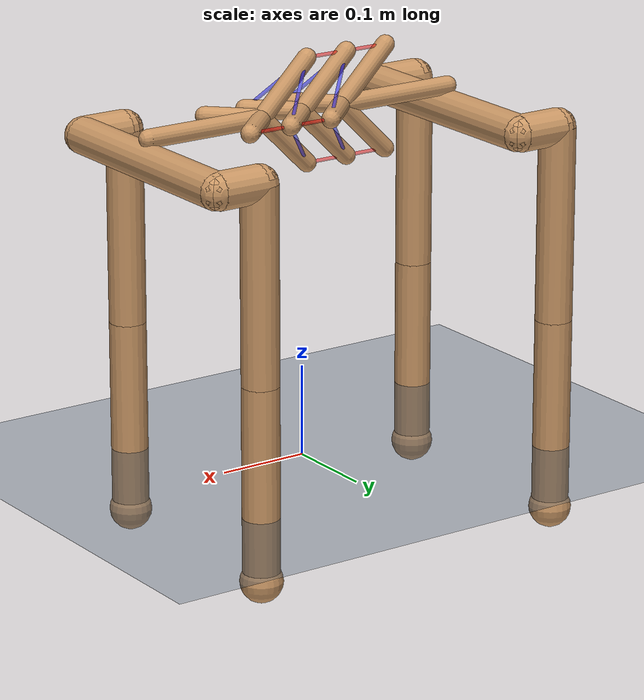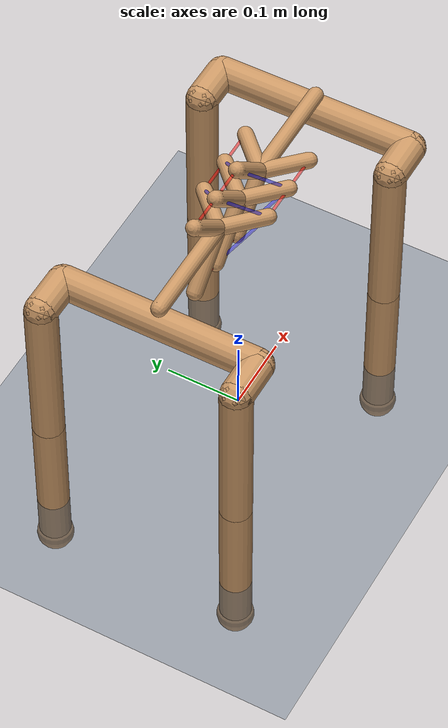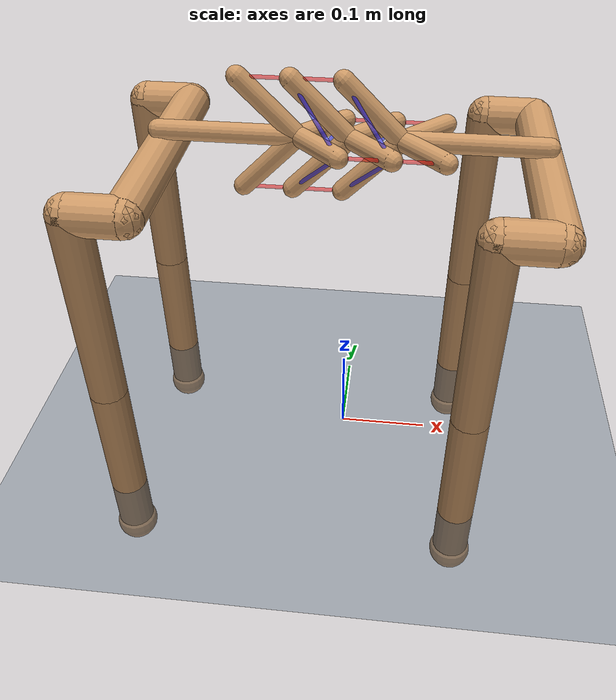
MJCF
<mujoco model="unnamed_model">
  <compiler angle="radian"/>
  <option timestep="0.002" integrator="implicitfast" iterations="100" ls_iterations="50"/>
  <default>
    <default class="/">
      <default class="tq1">
        <joint type="hinge" limited="true" armature="0.0050000000000000001" damping="0.10000000000000001" frictionloss="0.001"/>
        <geom contype="0" conaffinity="0" condim="3"/>
        <position ctrlrange="-2.3559999999999999 2.3559999999999999" forcerange="-50 50" kp="50"/>
        <default class="vertebra_geom">
          <geom type="capsule" group="0" size="0.01" rgba="0.80000000000000004 0.59999999999999998 0.40000000000000002 1" density="1750"/>
        </default>
        <default class="leg_geom">
          <geom type="capsule" conaffinity="1" group="1" size="0.02" rgba="0.80000000000000004 0.59999999999999998 0.40000000000000002 1" density="1750"/>
        </default>
        <default class="lateral_tendon">
          <tendon frictionloss="0.02" width="0.002" rgba="1 0 0 0.5" stiffness="3000" damping="10"/>
        </default>
        <default class="diagonal_tendon">
          <tendon frictionloss="0.02" width="0.002" rgba="0 0 1 0.5" stiffness="3000" damping="10"/>
        </default>
      </default>
    </default>
  </default>
  <asset>
    <texture name="skybox" type="skybox" builtin="gradient" rgb1="0.40000000000000002 0.59999999999999998 0.80000000000000004" rgb2="0 0 0" mark="random" markrgb="1 1 1" width="800" height="800"/>
    <texture name="grid" type="2d" builtin="checker" rgb1="0.10000000000000001 0.20000000000000001 0.29999999999999999" rgb2="0.20000000000000001 0.29999999999999999 0.40000000000000002" mark="edge" markrgb="0.20000000000000001 0.29999999999999999 0.40000000000000002" width="300" height="300"/>
    <material name="grid" class="/" texture="grid" texrepeat="5 5" texuniform="true" reflectance="0.20000000000000001"/>
  </asset>
  <worldbody>
    <geom name="floor" class="/" type="plane" size="20 20 0.10000000000000001" material="grid" pos="0 0 0"/>
    <body name="vertebrae_0" childclass="tq1" pos="0.050000000000000003 0 0.38">
      <light name="tracking" mode="trackcom" pos="0 0 3" diffuse="0.59999999999999998 0.59999999999999998 0.59999999999999998"/>
      <camera name="track" mode="trackcom" pos="0.84599999999999997 -1.3 0.316" xyaxes="0.86599999999999999 0.5 0 -0.17100000000000001 0.29599999999999999 0.93999999999999995"/>
      <camera name="top" mode="trackcom" pos="-1 0 1" xyaxes="0 -1 0 0.69999999999999996 0 0.69999999999999996"/>
      <camera name="side" mode="trackcom" pos="0 -1 0.29999999999999999" xyaxes="1 0 0 0 1 2"/>
      <camera name="back" mode="trackcom" pos="-1 0 0.29999999999999999" xyaxes="0 -1 0 1 0 2"/>
      <joint name="joint_vertebrae_0" type="free"/>
      <site name="com_vertebrae_1" size="0.0060000000000000001" pos="0.1381 0 0"/>
      <geom name="vertebrae_0_a1_geom" class="vertebra_geom" fromto="0 0 0 -0.05656854249492381 0 0.056568542494923796"/>
      <site name="vertebrae_0_a1" size="0.0050000000000000001" pos="-0.05656854249492381 0 0.056568542494923796"/>
      <geom name="vertebrae_0_a2_geom" class="vertebra_geom" fromto="0 0 0 -0.05656854249492381 0 -0.056568542494923796"/>
      <site name="vertebrae_0_a2" size="0.0050000000000000001" pos="-0.05656854249492381 0 -0.056568542494923796"/>
      <geom name="vertebrae_0_b1_geom" class="vertebra_geom" fromto="0 0 0 0.042426406871192854 0.042426406871192847 0"/>
      <site name="vertebrae_0_b1" size="0.0050000000000000001" pos="0.042426406871192854 0.042426406871192847 0"/>
      <geom name="vertebrae_0_b2_geom" class="vertebra_geom" fromto="0 0 0 0.042426406871192854 -0.042426406871192847 0"/>
      <site name="vertebrae_0_b2" size="0.0050000000000000001" pos="0.042426406871192854 -0.042426406871192847 0"/>
      <geom name="front_spacer" class="vertebra_geom" type="capsule" fromto="0 0 0 0.1381 0 0"/>
      <geom name="front_shoulder" class="leg_geom" fromto="0.1381 -0.12675 -0.025000000000000001 0.1381 0.12675 -0.025000000000000001"/>
      <geom name="front_shoulder_attach" class="leg_geom" size="0.0050000000000000001" fromto="0.1381 0 0 0.1381 0 -0.025000000000000001"/>
      <body name="fr_leg" pos="0.1381 -0.12675 -0.025000000000000001">
        <joint name="fr_hip_roll" axis="1 0 0" range="-0.86299999999999999 0.86299999999999999"/>
        <geom name="fr_hip_roll_geom" class="leg_geom" fromto="0 0 0 -0.050000000000000003 0 0"/>
        <body name="fr_hip_pitch" pos="-0.050000000000000003 0 0">
          <joint name="fr_hip_pitch" axis="0 1 0" range="-0.68600000000000005 4.5010000000000003"/>
          <geom name="fr_hip_pitch_geom" class="leg_geom" fromto="0 0 0 0 0 -0.21299999999999999"/>
          <body name="fr_knee" pos="0 0 -0.21299999999999999">
            <joint name="fr_knee" axis="0 1 0" range="-2.8180000000000001 -0.88800000000000001"/>
            <geom name="fr_shin_geom" class="leg_geom" conaffinity="1" fromto="0 0 0 0 0 -0.21299999999999999"/>
            <body name="fr_foot" pos="0 0 -0.21299999999999999">
              <geom name="fr_foot_geom" class="leg_geom" type="sphere" conaffinity="1" size="0.023" friction="0.80000000000000004 0.02 0.01"/>
              <site name="fr_foot_site" size="0.023" pos="0 0 0"/>
            </body>
          </body>
        </body>
      </body>
      <body name="fl_leg" pos="0.1381 0.12675 -0.025000000000000001">
        <joint name="fl_hip_roll" axis="1 0 0" range="-0.86299999999999999 0.86299999999999999"/>
        <geom name="fl_hip_roll_geom" class="leg_geom" fromto="0 0 0 -0.050000000000000003 0 0"/>
        <body name="fl_hip_pitch" pos="-0.050000000000000003 0 0">
          <joint name="fl_hip_pitch" axis="0 1 0" range="-0.68600000000000005 4.5010000000000003"/>
          <geom name="fl_hip_pitch_geom" class="leg_geom" fromto="0 0 0 0 0 -0.21299999999999999"/>
          <body name="fl_knee" pos="0 0 -0.21299999999999999">
            <joint name="fl_knee" axis="0 1 0" range="-2.8180000000000001 -0.88800000000000001"/>
            <geom name="fl_shin_geom" class="leg_geom" conaffinity="1" fromto="0 0 0 0 0 -0.21299999999999999"/>
            <body name="fl_foot" pos="0 0 -0.21299999999999999">
              <geom name="fl_foot_geom" class="leg_geom" type="sphere" conaffinity="1" size="0.023" friction="0.80000000000000004 0.02 0.01"/>
              <site name="fl_foot_site" size="0.023" pos="0 0 0"/>
            </body>
          </body>
        </body>
      </body>
    </body>
    <body name="vertebrae_1" childclass="tq1" pos="0 0 0.38">
      <joint name="joint_vertebrae_1" type="free"/>
      <geom name="vertebrae_1_a1_geom" class="vertebra_geom" fromto="0 0 0 -0.05656854249492381 0 0.056568542494923796"/>
      <site name="vertebrae_1_a1" size="0.0050000000000000001" pos="-0.05656854249492381 0 0.056568542494923796"/>
      <geom name="vertebrae_1_a2_geom" class="vertebra_geom" fromto="0 0 0 -0.05656854249492381 0 -0.056568542494923796"/>
      <site name="vertebrae_1_a2" size="0.0050000000000000001" pos="-0.05656854249492381 0 -0.056568542494923796"/>
      <geom name="vertebrae_1_b1_geom" class="vertebra_geom" fromto="0 0 0 0.042426406871192854 0.042426406871192847 0"/>
      <site name="vertebrae_1_b1" size="0.0050000000000000001" pos="0.042426406871192854 0.042426406871192847 0"/>
      <geom name="vertebrae_1_b2_geom" class="vertebra_geom" fromto="0 0 0 0.042426406871192854 -0.042426406871192847 0"/>
      <site name="vertebrae_1_b2" size="0.0050000000000000001" pos="0.042426406871192854 -0.042426406871192847 0"/>
    </body>
    <body name="vertebrae_2" childclass="tq1" pos="-0.050000000000000003 0 0.38">
      <joint name="joint_vertebrae_2" type="free"/>
      <geom name="vertebrae_2_a1_geom" class="vertebra_geom" fromto="0 0 0 -0.05656854249492381 0 0.056568542494923796"/>
      <site name="vertebrae_2_a1" size="0.0050000000000000001" pos="-0.05656854249492381 0 0.056568542494923796"/>
      <geom name="vertebrae_2_a2_geom" class="vertebra_geom" fromto="0 0 0 -0.05656854249492381 0 -0.056568542494923796"/>
      <site name="vertebrae_2_a2" size="0.0050000000000000001" pos="-0.05656854249492381 0 -0.056568542494923796"/>
      <geom name="vertebrae_2_b1_geom" class="vertebra_geom" fromto="0 0 0 0.042426406871192854 0.042426406871192847 0"/>
      <site name="vertebrae_2_b1" size="0.0050000000000000001" pos="0.042426406871192854 0.042426406871192847 0"/>
      <geom name="vertebrae_2_b2_geom" class="vertebra_geom" fromto="0 0 0 0.042426406871192854 -0.042426406871192847 0"/>
      <site name="vertebrae_2_b2" size="0.0050000000000000001" pos="0.042426406871192854 -0.042426406871192847 0"/>
      <geom name="rear_spacer" class="vertebra_geom" type="capsule" fromto="0 0 0 -0.1381 0 0"/>
      <geom name="hind_shoulder" class="leg_geom" fromto="-0.1381 -0.12675 -0.025000000000000001 -0.1381 0.12675 -0.025000000000000001"/>
      <geom name="hind_shoulder_attach" class="leg_geom" size="0.0050000000000000001" fromto="-0.1381 0 0 -0.1381 0 -0.025000000000000001"/>
      <body name="rr_leg" pos="-0.1381 -0.12675 -0.025000000000000001">
        <joint name="rr_hip_roll" axis="1 0 0" range="-0.86299999999999999 0.86299999999999999"/>
        <geom name="rr_hip_roll_geom" class="leg_geom" fromto="0 0 0 -0.050000000000000003 0 0"/>
        <body name="rr_hip_pitch" pos="-0.050000000000000003 0 0">
          <joint name="rr_hip_pitch" axis="0 1 0" range="-0.68600000000000005 4.5010000000000003"/>
          <geom name="rr_hip_pitch_geom" class="leg_geom" fromto="0 0 0 0 0 -0.21299999999999999"/>
          <body name="rr_knee" pos="0 0 -0.21299999999999999">
            <joint name="rr_knee" axis="0 1 0" range="-2.8180000000000001 -0.88800000000000001"/>
            <geom name="rr_shin_geom" class="leg_geom" conaffinity="1" fromto="0 0 0 0 0 -0.21299999999999999"/>
            <body name="rr_foot" pos="0 0 -0.21299999999999999">
              <geom name="rr_foot_geom" class="leg_geom" type="sphere" conaffinity="1" size="0.023" friction="0.80000000000000004 0.02 0.01"/>
              <site name="rr_foot_site" size="0.023" pos="0 0 0"/>
            </body>
          </body>
        </body>
      </body>
      <body name="rl_leg" pos="-0.1381 0.12675 -0.025000000000000001">
        <joint name="rl_hip_roll" axis="1 0 0" range="-0.86299999999999999 0.86299999999999999"/>
        <geom name="rl_hip_roll_geom" class="leg_geom" fromto="0 0 0 -0.050000000000000003 0 0"/>
        <body name="rl_hip_pitch" pos="-0.050000000000000003 0 0">
          <joint name="rl_hip_pitch" axis="0 1 0" range="-0.68600000000000005 4.5010000000000003"/>
          <geom name="rl_hip_pitch_geom" class="leg_geom" fromto="0 0 0 0 0 -0.21299999999999999"/>
          <body name="rl_knee" pos="0 0 -0.21299999999999999">
            <joint name="rl_knee" axis="0 1 0" range="-2.8180000000000001 -0.88800000000000001"/>
            <geom name="rl_shin_geom" class="leg_geom" conaffinity="1" fromto="0 0 0 0 0 -0.21299999999999999"/>
            <body name="rl_foot" pos="0 0 -0.21299999999999999">
              <geom name="rl_foot_geom" class="leg_geom" type="sphere" conaffinity="1" size="0.023" friction="0.80000000000000004 0.02 0.01"/>
              <site name="rl_foot_site" size="0.023" pos="0 0 0"/>
            </body>
          </body>
        </body>
      </body>
    </body>
  </worldbody>
  <tendon>
    <spatial name="lat_a1_0" class="lateral_tendon" springlength="0.045000000000000005">
      <site site="vertebrae_0_a1"/>
      <site site="vertebrae_1_a1"/>
    </spatial>
    <spatial name="lat_a2_0" class="lateral_tendon" springlength="0.045000000000000005">
      <site site="vertebrae_0_a2"/>
      <site site="vertebrae_1_a2"/>
    </spatial>
    <spatial name="lat_b1_0" class="lateral_tendon" springlength="0.045000000000000005">
      <site site="vertebrae_0_b1"/>
      <site site="vertebrae_1_b1"/>
    </spatial>
    <spatial name="lat_b2_0" class="lateral_tendon" springlength="0.045000000000000005">
      <site site="vertebrae_0_b2"/>
      <site site="vertebrae_1_b2"/>
    </spatial>
    <spatial name="diag_a1b1_0" class="diagonal_tendon" springlength="0.077423569417487806">
      <site site="vertebrae_0_a1"/>
      <site site="vertebrae_1_b1"/>
    </spatial>
    <spatial name="diag_a2b2_0" class="diagonal_tendon" springlength="0.077423569417487806">
      <site site="vertebrae_0_a2"/>
      <site site="vertebrae_1_b2"/>
    </spatial>
    <spatial name="diag_a1b2_0" class="diagonal_tendon" springlength="0.077423569417487806">
      <site site="vertebrae_0_a1"/>
      <site site="vertebrae_1_b2"/>
    </spatial>
    <spatial name="diag_a2b1_0" class="diagonal_tendon" springlength="0.077423569417487806">
      <site site="vertebrae_0_a2"/>
      <site site="vertebrae_1_b1"/>
    </spatial>
    <spatial name="lat_a1_1" class="lateral_tendon" springlength="0.045000000000000005">
      <site site="vertebrae_1_a1"/>
      <site site="vertebrae_2_a1"/>
    </spatial>
    <spatial name="lat_a2_1" class="lateral_tendon" springlength="0.045000000000000005">
      <site site="vertebrae_1_a2"/>
      <site site="vertebrae_2_a2"/>
    </spatial>
    <spatial name="lat_b1_1" class="lateral_tendon" springlength="0.045000000000000005">
      <site site="vertebrae_1_b1"/>
      <site site="vertebrae_2_b1"/>
    </spatial>
    <spatial name="lat_b2_1" class="lateral_tendon" springlength="0.045000000000000005">
      <site site="vertebrae_1_b2"/>
      <site site="vertebrae_2_b2"/>
    </spatial>
    <spatial name="diag_a1b1_1" class="diagonal_tendon" springlength="0.077423569417487806">
      <site site="vertebrae_1_a1"/>
      <site site="vertebrae_2_b1"/>
    </spatial>
    <spatial name="diag_a2b2_1" class="diagonal_tendon" springlength="0.077423569417487806">
      <site site="vertebrae_1_a2"/>
      <site site="vertebrae_2_b2"/>
    </spatial>
    <spatial name="diag_a1b2_1" class="diagonal_tendon" springlength="0.077423569417487806">
      <site site="vertebrae_1_a1"/>
      <site site="vertebrae_2_b2"/>
    </spatial>
    <spatial name="diag_a2b1_1" class="diagonal_tendon" springlength="0.077423569417487806">
      <site site="vertebrae_1_a2"/>
      <site site="vertebrae_2_b1"/>
    </spatial>
  </tendon>
  <actuator>
    <position name="fr_hip_roll" class="/" ctrlrange="-0.86299999999999999 0.86299999999999999" forcerange="-35.549999999999997 35.549999999999997" joint="fr_hip_roll"/>
    <position name="fr_hip_pitch" class="/" ctrlrange="-0.68600000000000005 4.5010000000000003" forcerange="-23.699999999999999 23.699999999999999" joint="fr_hip_pitch"/>
    <position name="fr_knee" class="/" ctrlrange="-2.8180000000000001 -0.88800000000000001" forcerange="-35.549999999999997 35.549999999999997" joint="fr_knee"/>
    <position name="fl_hip_roll" class="/" ctrlrange="-0.86299999999999999 0.86299999999999999" forcerange="-35.549999999999997 35.549999999999997" joint="fl_hip_roll"/>
    <position name="fl_hip_pitch" class="/" ctrlrange="-0.68600000000000005 4.5010000000000003" forcerange="-23.699999999999999 23.699999999999999" joint="fl_hip_pitch"/>
    <position name="fl_knee" class="/" ctrlrange="-2.8180000000000001 -0.88800000000000001" forcerange="-35.549999999999997 35.549999999999997" joint="fl_knee"/>
    <position name="rr_hip_roll" class="/" ctrlrange="-0.86299999999999999 0.86299999999999999" forcerange="-35.549999999999997 35.549999999999997" joint="rr_hip_roll"/>
    <position name="rr_hip_pitch" class="/" ctrlrange="-0.68600000000000005 4.5010000000000003" forcerange="-23.699999999999999 23.699999999999999" joint="rr_hip_pitch"/>
    <position name="rr_knee" class="/" ctrlrange="-2.8180000000000001 -0.88800000000000001" forcerange="-35.549999999999997 35.549999999999997" joint="rr_knee"/>
    <position name="rl_hip_roll" class="/" ctrlrange="-0.86299999999999999 0.86299999999999999" forcerange="-35.549999999999997 35.549999999999997" joint="rl_hip_roll"/>
    <position name="rl_hip_pitch" class="/" ctrlrange="-0.68600000000000005 4.5010000000000003" forcerange="-23.699999999999999 23.699999999999999" joint="rl_hip_pitch"/>
    <position name="rl_knee" class="/" ctrlrange="-2.8180000000000001 -0.88800000000000001" forcerange="-35.549999999999997 35.549999999999997" joint="rl_knee"/>
  </actuator>
  <sensor>
    <jointpos name="fr_hip_roll_pos" joint="fr_hip_roll"/>
    <jointpos name="fr_hip_pitch_pos" joint="fr_hip_pitch"/>
    <jointpos name="fr_knee_pos" joint="fr_knee"/>
    <jointpos name="fl_hip_roll_pos" joint="fl_hip_roll"/>
    <jointpos name="fl_hip_pitch_pos" joint="fl_hip_pitch"/>
    <jointpos name="fl_knee_pos" joint="fl_knee"/>
    <jointpos name="rr_hip_roll_pos" joint="rr_hip_roll"/>
    <jointpos name="rr_hip_pitch_pos" joint="rr_hip_pitch"/>
    <jointpos name="rr_knee_pos" joint="rr_knee"/>
    <jointpos name="rl_hip_roll_pos" joint="rl_hip_roll"/>
    <jointpos name="rl_hip_pitch_pos" joint="rl_hip_pitch"/>
    <jointpos name="rl_knee_pos" joint="rl_knee"/>
    <jointvel name="fr_hip_roll_vel" joint="fr_hip_roll"/>
    <jointvel name="fr_hip_pitch_vel" joint="fr_hip_pitch"/>
    <jointvel name="fr_knee_vel" joint="fr_knee"/>
    <jointvel name="fl_hip_roll_vel" joint="fl_hip_roll"/>
    <jointvel name="fl_hip_pitch_vel" joint="fl_hip_pitch"/>
    <jointvel name="fl_knee_vel" joint="fl_knee"/>
    <jointvel name="rr_hip_roll_vel" joint="rr_hip_roll"/>
    <jointvel name="rr_hip_pitch_vel" joint="rr_hip_pitch"/>
    <jointvel name="rr_knee_vel" joint="rr_knee"/>
    <jointvel name="rl_hip_roll_vel" joint="rl_hip_roll"/>
    <jointvel name="rl_hip_pitch_vel" joint="rl_hip_pitch"/>
    <jointvel name="rl_knee_vel" joint="rl_knee"/>
    <gyro name="gyro" site="com_vertebrae_1"/>
    <velocimeter name="local_linvel" site="com_vertebrae_1"/>
    <accelerometer name="accelerometer" site="com_vertebrae_1"/>
    <framepos name="position" objtype="site" objname="com_vertebrae_1"/>
    <framezaxis name="upvector" objtype="site" objname="com_vertebrae_1"/>
    <framexaxis name="forwardvector" objtype="site" objname="com_vertebrae_1"/>
    <framelinvel name="global_linvel" objtype="site" objname="com_vertebrae_1"/>
    <frameangvel name="global_angvel" objtype="site" objname="com_vertebrae_1"/>
    <framequat name="orientation" objtype="site" objname="com_vertebrae_1"/>
    <framelinvel name="fr_foot_global_linvel" objtype="site" objname="fr_foot_site"/>
    <framelinvel name="fl_foot_global_linvel" objtype="site" objname="fl_foot_site"/>
    <framelinvel name="rr_foot_global_linvel" objtype="site" objname="rr_foot_site"/>
    <framelinvel name="rl_foot_global_linvel" objtype="site" objname="rl_foot_site"/>
    <touch name="fr_foot_touch" site="fr_foot_site"/>
    <touch name="fl_foot_touch" site="fl_foot_site"/>
    <touch name="rr_foot_touch" site="rr_foot_site"/>
    <touch name="rl_foot_touch" site="rl_foot_site"/>
  </sensor>
  <keyframe>
    <key name="stable_pose" qpos="0 0 0.38 1 0 0 0 -0.059999999999999998 0.90000000000000002 -1.55 0.059999999999999998 0.90000000000000002 -1.55 -0.050000000000000003 0 0.38 1 0 0 0 -0.10000000000000001 0 0.38 1 0 0 0 -0.059999999999999998 0.90000000000000002 -1.55 0.059999999999999998 0.90000000000000002 -1.55" ctrl="-0.059999999999999998 0.90000000000000002 -1.55 0.059999999999999998 0.90000000000000002 -1.55 -0.059999999999999998 0.90000000000000002 -1.55 0.059999999999999998 0.90000000000000002 -1.55"/>
  </keyframe>
</mujoco>
